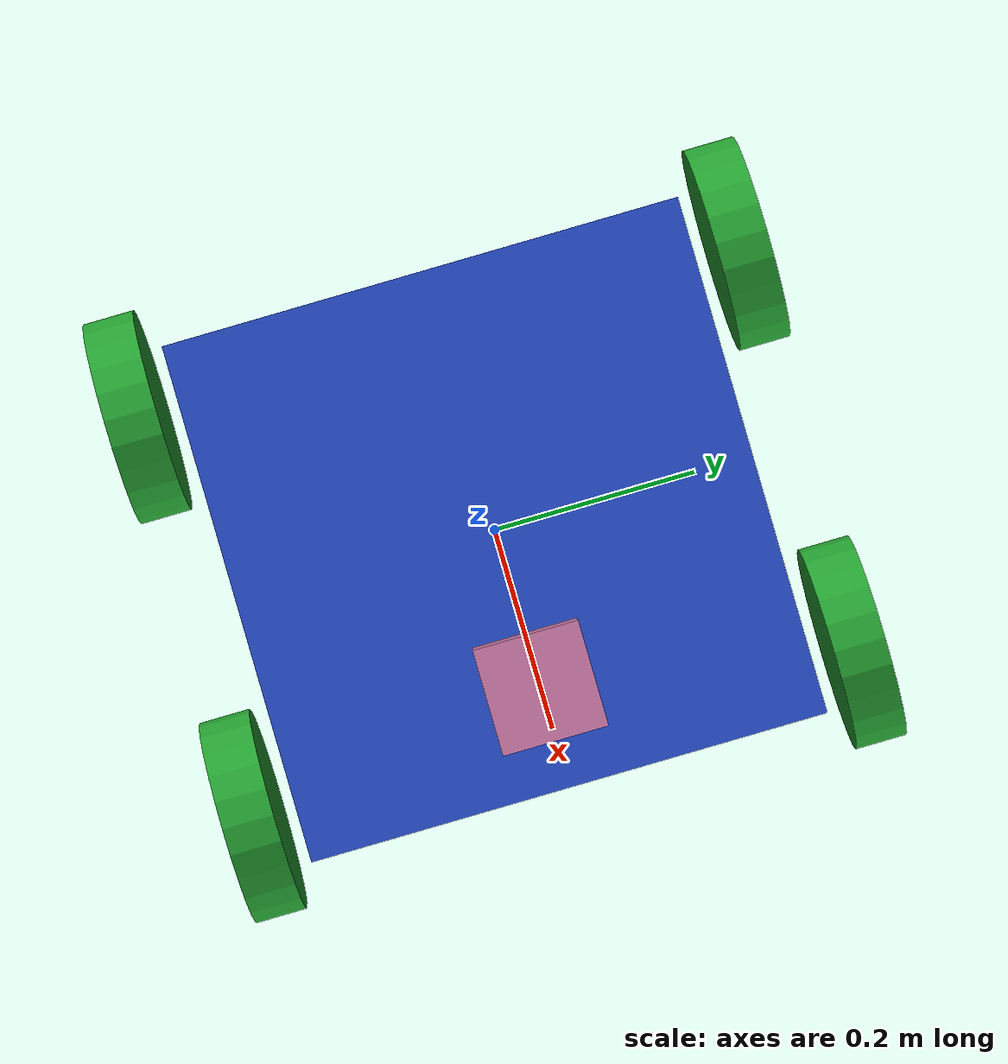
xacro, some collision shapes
<?xml version='1.0'?>

<robot name="atom" xmlns:xacro="http://www.ros.org/wiki/xacro">
	<xacro:property name="robot_name" value="atom" />
	<xacro:property name="robot_chassis_mass" value="15"/>
	<xacro:property name="robot_chassis_length" value="0.2"/>
	<xacro:property name="robot_chassis_radius" value="0.25"/>
	<xacro:property name="robot_caster_wheel_radius" value="0.05"/>
	<xacro:property name="robot_caster_wheel_radius_collision" value="0.0499"/>

	<xacro:property name="robot_wheel_mass" value="5"/>
	<xacro:property name="robot_wheel_length" value="0.05"/>
	<xacro:property name="robot_wheel_radius" value="0.1"/>
		<!-- Motor, Camera and Lidar Simulation -->
	<xacro:include filename="$(find 2wbot_description)/urdf/atom.gazebo" />

	<!-- Make Chassis of Bot -->
	<link name="chassis">
		<pose>0 0 0.1 0 0 0</pose>

		<inertial>
			<mass value="${robot_chassis_mass}"/>
      		<origin xyz="0.0 0 0" rpy=" 0 0 0"/>

      		<inertia
      			ixx="0.147116667" ixy="0" ixz="0"
      			iyy="0.334951167" iyz="0"
      			izz="0.3978345"
      		/>
		</inertial>

		<collision name="collision">
			<origin xyz="0 0 0.05" rpy=" 0 0 0"/>
			<geometry>
				<box size="0.5 0.5 0.2"/>
			</geometry>
		</collision>

		<visual name="chassis_visual">
			<origin xyz="0 0 0.05" rpy=" 0 0 0"/>
			<geometry>
				<box size="0.5 0.5 0.2"/>
			</geometry>

		</visual>

	</link>

	<!-- Right Wheel Back -->
	<link name="right_wheel_back">
		<inertial>
			<mass value="${robot_wheel_mass}"/>
			<origin xyz="0 0 0" rpy="0 1.5707 1.5707"/>
			<inertia
				ixx="0.1" ixy="0.0" ixz="0.0"
				iyy="0.1" iyz="0.0"
				izz="0.1"
			/>
		</inertial>

		<visual>
			<origin xyz="0 0 0" rpy="0 1.5707 1.5707"/>
			<geometry>
				<cylinder radius="${robot_wheel_radius}" length="${robot_wheel_length}"/>
			</geometry>
		</visual>

		<collision>
			<origin xyz="0 0 0" rpy="0 1.5707 1.5707"/>
			<geometry>
				<cylinder radius="${robot_wheel_radius}" length="${robot_wheel_length}"/>
			</geometry>
		</collision>

	</link>

	<!-- Right Wheel Front-->
	<link name="right_wheel_front">
		<inertial>
			<mass value="${robot_wheel_mass}"/>
			<origin xyz="0 0 0" rpy="0 1.5707 1.5707"/>
			<inertia
				ixx="0.1" ixy="0.0" ixz="0.0"
				iyy="0.1" iyz="0.0"
				izz="0.1"
			/>
		</inertial>

		<visual>
			<origin xyz="0 0 0" rpy="0 1.5707 1.5707"/>
			<geometry>
				<cylinder radius="${robot_wheel_radius}" length="${robot_wheel_length}"/>
			</geometry>
		</visual>

		<collision>
			<origin xyz="0 0 0" rpy="0 1.5707 1.5707"/>
			<geometry>
				<cylinder radius="${robot_wheel_radius}" length="${robot_wheel_length}"/>
			</geometry>
		</collision>

	</link>

	<!-- Left wheel Back-->
	<link name="left_wheel_back">
		<inertial>
			<mass value="${robot_wheel_mass}"/>
			<origin xyz="0 0 0" rpy="0 1.5707 1.5707"/>
			<inertia
				ixx="0.1" ixy="0.0" ixz="0.0"
				iyy="0.1" iyz="0.0"
				izz="0.1"
			/>
		</inertial>

		<visual>
			<origin xyz="0 0 0" rpy="0 1.5707 1.5707"/>
			<geometry>
				<cylinder radius="${robot_wheel_radius}" length="${robot_wheel_length}"/>
			</geometry>
		</visual>

		<collision>
			<origin xyz="0 0 0" rpy="0 1.5707 1.5707"/>
			<geometry>
				<cylinder radius="${robot_wheel_radius}" length="${robot_wheel_length}"/>
			</geometry>
		</collision>

	</link>

	<!-- Left wheel Front-->
	<link name="left_wheel_front">
		<inertial>
			<mass value="${robot_wheel_mass}"/>
			<origin xyz="0 0 0" rpy="0 1.5707 1.5707"/>
			<inertia
				ixx="0.1" ixy="0.0" ixz="0.0"
				iyy="0.1" iyz="0.0"
				izz="0.1"
			/>
		</inertial>

		<visual>
			<origin xyz="0 0 0" rpy="0 1.5707 1.5707"/>
			<geometry>
				<cylinder radius="${robot_wheel_radius}" length="${robot_wheel_length}"/>
			</geometry>
		</visual>

		<collision>
			<origin xyz="0 0 0" rpy="0 1.5707 1.5707"/>
			<geometry>
				<cylinder radius="${robot_wheel_radius}" length="${robot_wheel_length}"/>
			</geometry>
		</collision>

	</link>

	<!-- Project center to the ground -->
	<link name="robot_footprint"></link>

	<!-- Define Joints -->

	<!-- Right Wheel Joint Back-->
	<joint type="continuous" name="right_wheel_hinge_back">
	    <origin xyz="-0.2 -0.30 0" rpy="0 0 0" />
	    <parent link="chassis"/>
	    <child link="right_wheel_back" />
	    <axis xyz="0 1 0" rpy="0 0 0" />
	    <limit effort="10000" velocity="1000" />
	    <dynamics damping="1.0" friction="1.0" />
	</joint>

	<!-- Right Wheel Joint Front-->
	<joint type="continuous" name="right_wheel_hinge_front">
	    <origin xyz="0.2 -0.30 0" rpy="0 0 0" />
	    <parent link="chassis"/>
	    <child link="right_wheel_front" />
	    <axis xyz="0 1 0" rpy="0 0 0" />
	    <limit effort="10000" velocity="1000" />
	    <dynamics damping="1.0" friction="1.0" />
	</joint>

	<!-- Left Wheel Joint Back-->
	<joint type="continuous" name="left_wheel_hinge_back">
	    <origin xyz="-0.2 0.30 0" rpy="0 0 0" />
	    <parent link="chassis"/>
	    <child link="left_wheel_back" />
	    <axis xyz="0 1 0" rpy="0 0 0" />
	    <limit effort="10000" velocity="1000" />
	    <dynamics damping="1.0" friction="1.0" />
	</joint>

	<!-- Left Wheel Joint Front-->
	<joint type="continuous" name="left_wheel_hinge_front">
	    <origin xyz="0.2 0.30 0" rpy="0 0 0" />
	    <parent link="chassis"/>
	    <child link="left_wheel_front" />
	    <axis xyz="0 1 0" rpy="0 0 0" />
	    <limit effort="10000" velocity="1000" />
	    <dynamics damping="1.0" friction="1.0" />
	</joint>

	<joint name="robot_footprint_joint" type="fixed">
		<origin xyz="0 0 0" rpy="0 0 0" />
		<parent link="robot_footprint"/>
		<child link="chassis" />
	</joint>

	<!-- Color of bot -->
	<gazebo reference="left_wheel_front">
		<material>Gazebo/Green</material>
		<kp>1000000.0</kp> <!-- kp and kd for rubber -->
		<kd>100.0</kd>
		<mu1>1.0</mu1>
		<mu2>1.0</mu2>
		<maxVel>1.0</maxVel>
		<minDepth>0.00</minDepth>
	</gazebo>

	<gazebo reference="left_wheel_back">
		<material>Gazebo/Green</material>
		<kp>1000000.0</kp> <!-- kp and kd for rubber -->
		<kd>100.0</kd>
		<mu1>1.0</mu1>
		<mu2>1.0</mu2>
		<maxVel>1.0</maxVel>
		<minDepth>0.00</minDepth>
	</gazebo>

	<gazebo reference="right_wheel_front">
		<material>Gazebo/Green</material>
		<kp>1000000.0</kp> <!-- kp and kd for rubber -->
		<kd>100.0</kd>
		<mu1>1.0</mu1>
		<mu2>1.0</mu2>
		<maxVel>1.0</maxVel>
		<minDepth>0.00</minDepth>
	</gazebo>
	<gazebo reference="right_wheel_back">
		<material>Gazebo/Green</material>
		<kp>1000000.0</kp> <!-- kp and kd for rubber -->
		<kd>100.0</kd>
		<mu1>1.0</mu1>
		<mu2>1.0</mu2>
		<maxVel>1.0</maxVel>
		<minDepth>0.00</minDepth>
	</gazebo>

	<gazebo reference="chassis">
		<material>Gazebo/Blue</material>
	</gazebo>

  <joint name="hokuyo_joint" type="fixed">
    <axis xyz="0 1 0" />
    <origin xyz="0.15 0 0.2" rpy="0 0 0"/>
    <parent link="chassis"/>
    <child link="hokuyo_link"/>
  </joint>

  <!-- Hokuyo Laser -->
  <link name="hokuyo_link">
    <collision>
      <origin xyz="0 0 0" rpy="0 0 0"/>
      <geometry>
    <box size="0.1 0.1 0.1"/>
      </geometry>
    </collision>

    <visual>
      <origin xyz="0 0 0" rpy="0 0 0"/>
      <geometry>
        <mesh filename="package://rrbot_description/meshes/hokuyo.dae"/>
      </geometry>
    </visual>

    <inertial>
      <mass value="1e-5" />
      <origin xyz="0 0 0" rpy="0 0 0"/>
      <inertia ixx="1e-6" ixy="0" ixz="0" iyy="1e-6" iyz="0" izz="1e-6" />
    </inertial>
  </link>
</robot>
